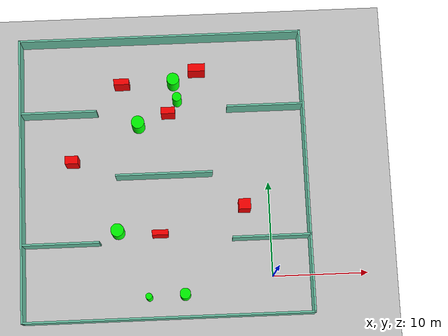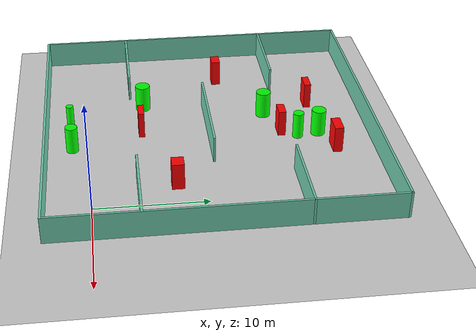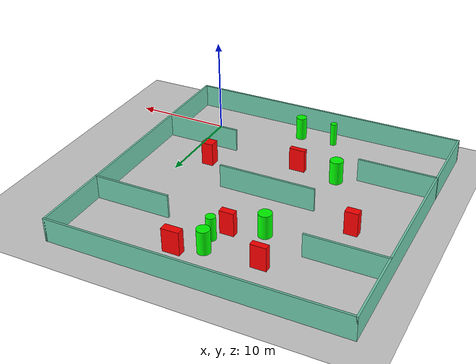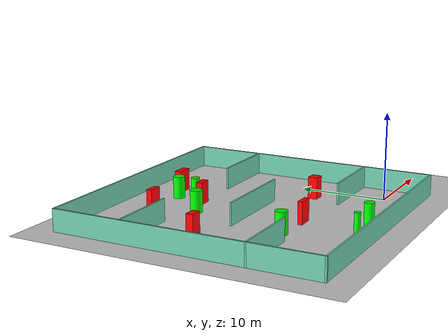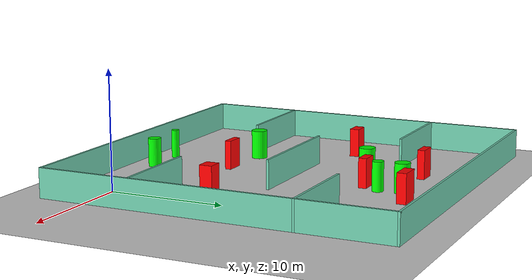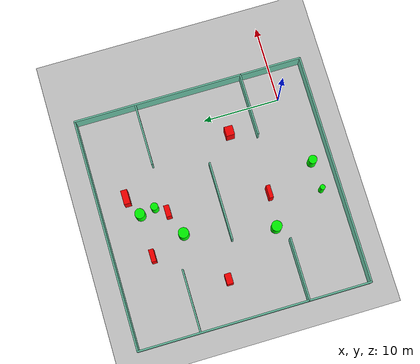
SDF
<sdf version="1.7">
 <world name="default">
  <light name="sun" type="directional">
   <pose>0 0 10 0 -0 0</pose>
   <diffuse>0.8 0.8 0.8 1</diffuse>
   <specular>0.2 0.2 0.2 1</specular>
   <attenuation>
    <range>1000</range>
    <constant>0.9</constant>
    <linear>0.01</linear>
    <quadratic>0.001</quadratic>
   </attenuation>
   <direction>-0.5 0.1 -0.9</direction>
   <spot><inner_angle>0</inner_angle><outer_angle>0</outer_angle><falloff>0</falloff></spot>
  </light>
  <model name="ground_plane">
   <static>1</static>
   <link name="link">
    <collision name="collision">
     <geometry><plane><normal>0 0 1</normal><size>100 100</size></plane></geometry>
     <surface>
      <contact><collide_bitmask>65535</collide_bitmask></contact>
      <friction><ode><mu>100</mu><mu2>50</mu2></ode></friction>
     </surface>
    </collision>
    <visual name="visual">
     <cast_shadows>0</cast_shadows>
     <geometry><plane><normal>0 0 1</normal><size>100 100</size></plane></geometry>
     <material>
      <script><uri>file://media/materials/scripts/gazebo.material</uri><name>Gazebo/Grey</name></script>
     </material>
    </visual>
   </link>
  </model>
  <gravity>0 0 -9.8</gravity>
  <magnetic_field>6e-06 2.3e-05 -4.2e-05</magnetic_field>
  <atmosphere type="adiabatic"/>
  <physics type="ode">
   <max_step_size>0.001</max_step_size>
   <real_time_factor>1</real_time_factor>
   <real_time_update_rate>1000</real_time_update_rate>
  </physics>
  <scene><ambient>0.4 0.4 0.4 1</ambient><background>0.7 0.7 0.7 1</background><shadows>1</shadows></scene>
  <spherical_coordinates>
   <surface_model>EARTH_WGS84</surface_model>
   <latitude_deg>0</latitude_deg>
   <longitude_deg>0</longitude_deg>
   <elevation>0</elevation>
   <heading_deg>0</heading_deg>
  </spherical_coordinates>
  <model name="my_base_walls">
   <link name="Wall_10">
    <collision name="Wall_10_Collision">
     <geometry><box><size>8.2 0.2 2.5</size></box></geometry>
     <pose>0 0 1.25 0 -0 0</pose>
    </collision>
    <visual name="Wall_10_Visual">
     <pose>0 0 1.25 0 -0 0</pose>
     <geometry><box><size>8.2 0.2 2.5</size></box></geometry>
     <material>
      <script><uri>file://media/materials/scripts/gazebo.material</uri><name>Gazebo/Grey</name></script>
      <ambient>0.435294 0.796078 0.67451 1</ambient>
     </material>
     <meta><layer>0</layer></meta>
    </visual>
    <pose>-11 -7 0 0 -0 0</pose>
   </link>
   <link name="Wall_12">
    <collision name="Wall_12_Collision">
     <geometry><box><size>8.2 0.2 2.5</size></box></geometry>
     <pose>0 0 1.25 0 -0 0</pose>
    </collision>
    <visual name="Wall_12_Visual">
     <pose>0 0 1.25 0 -0 0</pose>
     <geometry><box><size>8.2 0.2 2.5</size></box></geometry>
     <material>
      <script><uri>file://media/materials/scripts/gazebo.material</uri><name>Gazebo/Grey</name></script>
      <ambient>0.435294 0.796078 0.67451 1</ambient>
     </material>
     <meta><layer>0</layer></meta>
    </visual>
    <pose>-11 7 0 0 -0 0</pose>
   </link>
   <link name="Wall_14">
    <collision name="Wall_14_Collision">
     <geometry><box><size>8.2 0.2 2.5</size></box></geometry>
     <pose>0 0 1.25 0 -0 0</pose>
    </collision>
    <visual name="Wall_14_Visual">
     <pose>0 0 1.25 0 -0 0</pose>
     <geometry><box><size>8.2 0.2 2.5</size></box></geometry>
     <material>
      <script><uri>file://media/materials/scripts/gazebo.material</uri><name>Gazebo/Grey</name></script>
      <ambient>0.435294 0.796078 0.67451 1</ambient>
     </material>
     <meta><layer>0</layer></meta>
    </visual>
    <pose>11 7 0 0 -0 3.14159</pose>
   </link>
   <link name="Wall_16">
    <collision name="Wall_16_Collision">
     <geometry><box><size>10.2 0.2 2.5</size></box></geometry>
     <pose>0 0 1.25 0 -0 0</pose>
    </collision>
    <visual name="Wall_16_Visual">
     <pose>0 0 1.25 0 -0 0</pose>
     <geometry><box><size>10.2 0.2 2.5</size></box></geometry>
     <material>
      <script><uri>file://media/materials/scripts/gazebo.material</uri><name>Gazebo/Grey</name></script>
      <ambient>0.435294 0.796078 0.67451 1</ambient>
     </material>
     <meta><layer>0</layer></meta>
    </visual>
    <pose>0 0 0 0 -0 3.14159</pose>
   </link>
   <link name="Wall_2">
    <collision name="Wall_2_Collision">
     <geometry><box><size>30.2 0.2 2.5</size></box></geometry>
     <pose>0 0 1.25 0 -0 0</pose>
    </collision>
    <visual name="Wall_2_Visual">
     <pose>0 0 1.25 0 -0 0</pose>
     <geometry><box><size>30.2 0.2 2.5</size></box></geometry>
     <material>
      <script><uri>file://media/materials/scripts/gazebo.material</uri><name>Gazebo/Grey</name></script>
      <ambient>0.435294 0.796078 0.67451 1</ambient>
     </material>
     <meta><layer>0</layer></meta>
    </visual>
    <pose>0 -15 0 0 -0 3.14159</pose>
   </link>
   <link name="Wall_3">
    <collision name="Wall_3_Collision">
     <geometry><box><size>30.2 0.2 2.5</size></box></geometry>
     <pose>0 0 1.25 0 -0 0</pose>
    </collision>
    <visual name="Wall_3_Visual">
     <pose>0 0 1.25 0 -0 0</pose>
     <geometry><box><size>30.2 0.2 2.5</size></box></geometry>
     <material>
      <script><uri>file://media/materials/scripts/gazebo.material</uri><name>Gazebo/Grey</name></script>
      <ambient>0.435294 0.796078 0.67451 1</ambient>
     </material>
     <meta><layer>0</layer></meta>
    </visual>
    <pose>-15 0 0 0 -0 1.5708</pose>
   </link>
   <link name="Wall_4">
    <collision name="Wall_4_Collision">
     <geometry><box><size>30.2 0.2 2.5</size></box></geometry>
     <pose>0 0 1.25 0 -0 0</pose>
    </collision>
    <visual name="Wall_4_Visual">
     <pose>0 0 1.25 0 -0 0</pose>
     <geometry><box><size>30.2 0.2 2.5</size></box></geometry>
     <material>
      <script><uri>file://media/materials/scripts/gazebo.material</uri><name>Gazebo/Grey</name></script>
      <ambient>0.435294 0.796078 0.67451 1</ambient>
     </material>
     <meta><layer>0</layer></meta>
    </visual>
    <pose>0 15 0 0 -0 0</pose>
   </link>
   <link name="Wall_6">
    <collision name="Wall_6_Collision">
     <geometry><box><size>30.2 0.2 2.5</size></box></geometry>
     <pose>0 0 1.25 0 -0 0</pose>
    </collision>
    <visual name="Wall_6_Visual">
     <pose>0 0 1.25 0 -0 0</pose>
     <geometry><box><size>30.2 0.2 2.5</size></box></geometry>
     <material>
      <script><uri>file://media/materials/scripts/gazebo.material</uri><name>Gazebo/Grey</name></script>
      <ambient>0.435294 0.796078 0.67451 1</ambient>
     </material>
     <meta><layer>0</layer></meta>
    </visual>
    <pose>15 0 0 0 -0 1.5708</pose>
   </link>
   <link name="Wall_8">
    <collision name="Wall_8_Collision">
     <geometry><box><size>8.2 0.2 2.5</size></box></geometry>
     <pose>0 0 1.25 0 -0 0</pose>
    </collision>
    <visual name="Wall_8_Visual">
     <pose>0 0 1.25 0 -0 0</pose>
     <geometry><box><size>8.2 0.2 2.5</size></box></geometry>
     <material>
      <script><uri>file://media/materials/scripts/gazebo.material</uri><name>Gazebo/Grey</name></script>
      <ambient>0.435294 0.796078 0.67451 1</ambient>
     </material>
     <meta><layer>0</layer></meta>
    </visual>
    <pose>11 -7 0 0 -0 3.14159</pose>
   </link>
   <static>1</static>
   <pose>-11 11 0 0 -0 0</pose>
  </model>
  <model name="cylinder1">
   <static>1</static>
   <link name="link">
    <inertial>
     <mass>1</mass>
     <inertia><ixx>0.5</ixx><ixy>0</ixy><ixz>0</ixz><iyy>0.5</iyy><iyz>0</iyz><izz>1</izz></inertia>
    </inertial>
    <collision name="collision">
     <geometry><cylinder><radius>0.68902142395249</radius><length>2.5</length></cylinder></geometry>
    </collision>
    <visual name="visual">
     <geometry><cylinder><radius>0.68902142395249</radius><length>2.5</length></cylinder></geometry>
     <material>
      <ambient>0 1 0 1</ambient>
      <diffuse>0 1 0 1</diffuse>
      <specular>0.1 0.1 0.1 1</specular>
      <emissive>0 0 0 0</emissive>
     </material>
    </visual>
   </link>
   <pose>-16.033540875621824 5.190076468578164 1.25 0 0 0</pose>
  </model>
  <model name="cylinder2">
   <static>1</static>
   <link name="link">
    <inertial>
     <mass>1</mass>
     <inertia><ixx>0.5</ixx><ixy>0</ixy><ixz>0</ixz><iyy>0.5</iyy><iyz>0</iyz><izz>1</izz></inertia>
    </inertial>
    <collision name="collision">
     <geometry><cylinder><radius>0.6848314388634245</radius><length>2.5</length></cylinder></geometry>
    </collision>
    <visual name="visual">
     <geometry><cylinder><radius>0.6848314388634245</radius><length>2.5</length></cylinder></geometry>
     <material>
      <ambient>0 1 0 1</ambient>
      <diffuse>0 1 0 1</diffuse>
      <specular>0.1 0.1 0.1 1</specular>
      <emissive>0 0 0 0</emissive>
     </material>
    </visual>
   </link>
   <pose>-13.57892583504416 16.61398043957155 1.25 0 0 0</pose>
  </model>
  <model name="cylinder3">
   <static>1</static>
   <link name="link">
    <inertial>
     <mass>1</mass>
     <inertia><ixx>0.5</ixx><ixy>0</ixy><ixz>0</ixz><iyy>0.5</iyy><iyz>0</iyz><izz>1</izz></inertia>
    </inertial>
    <collision name="collision">
     <geometry><cylinder><radius>0.34084819831044505</radius><length>2.5</length></cylinder></geometry>
    </collision>
    <visual name="visual">
     <geometry><cylinder><radius>0.34084819831044505</radius><length>2.5</length></cylinder></geometry>
     <material>
      <ambient>0 1 0 1</ambient>
      <diffuse>0 1 0 1</diffuse>
      <specular>0.1 0.1 0.1 1</specular>
      <emissive>0 0 0 0</emissive>
     </material>
    </visual>
   </link>
   <pose>-12.962718868516411 -1.7735229312673897 1.25 0 0 0</pose>
  </model>
  <model name="cylinder4">
   <static>1</static>
   <link name="link">
    <inertial>
     <mass>1</mass>
     <inertia><ixx>0.5</ixx><ixy>0</ixy><ixz>0</ixz><iyy>0.5</iyy><iyz>0</iyz><izz>1</izz></inertia>
    </inertial>
    <collision name="collision">
     <geometry><cylinder><radius>0.6574655175954107</radius><length>2.5</length></cylinder></geometry>
    </collision>
    <visual name="visual">
     <geometry><cylinder><radius>0.6574655175954107</radius><length>2.5</length></cylinder></geometry>
     <material>
      <ambient>0 1 0 1</ambient>
      <diffuse>0 1 0 1</diffuse>
      <specular>0.1 0.1 0.1 1</specular>
      <emissive>0 0 0 0</emissive>
     </material>
    </visual>
   </link>
   <pose>-9.700416512899343 21.197660598318286 1.25 0 0 0</pose>
  </model>
  <model name="cylinder5">
   <static>1</static>
   <link name="link">
    <inertial>
     <mass>1</mass>
     <inertia><ixx>0.5</ixx><ixy>0</ixy><ixz>0</ixz><iyy>0.5</iyy><iyz>0</iyz><izz>1</izz></inertia>
    </inertial>
    <collision name="collision">
     <geometry><cylinder><radius>0.5583621504093734</radius><length>2.5</length></cylinder></geometry>
    </collision>
    <visual name="visual">
     <geometry><cylinder><radius>0.5583621504093734</radius><length>2.5</length></cylinder></geometry>
     <material>
      <ambient>0 1 0 1</ambient>
      <diffuse>0 1 0 1</diffuse>
      <specular>0.1 0.1 0.1 1</specular>
      <emissive>0 0 0 0</emissive>
     </material>
    </visual>
   </link>
   <pose>-9.222711218585523 -1.6400629885486686 1.25 0 0 0</pose>
  </model>
  <model name="cylinder6">
   <static>1</static>
   <link name="link">
    <inertial>
     <mass>1</mass>
     <inertia><ixx>0.5</ixx><ixy>0</ixy><ixz>0</ixz><iyy>0.5</iyy><iyz>0</iyz><izz>1</izz></inertia>
    </inertial>
    <collision name="collision">
     <geometry><cylinder><radius>0.48475914509386464</radius><length>2.5</length></cylinder></geometry>
    </collision>
    <visual name="visual">
     <geometry><cylinder><radius>0.48475914509386464</radius><length>2.5</length></cylinder></geometry>
     <material>
      <ambient>0 1 0 1</ambient>
      <diffuse>0 1 0 1</diffuse>
      <specular>0.1 0.1 0.1 1</specular>
      <emissive>0 0 0 0</emissive>
     </material>
    </visual>
   </link>
   <pose>-9.35529262453058 19.219750873318176 1.25 0 0 0</pose>
  </model>
  <model name="box1">
   <static>1</static>
   <link name="link">
    <inertial>
     <mass>1</mass>
     <inertia><ixx>0.083</ixx><ixy>0</ixy><ixz>0</ixz><iyy>0.083</iyy><iyz>0</iyz><izz>0.083</izz></inertia>
    </inertial>
    <collision name="collision">
     <geometry><box><size>1.248324032068731 1.0954177459827483 2.5</size></box></geometry>
    </collision>
    <visual name="visual">
     <geometry><box><size>1.248324032068731 1.0954177459827483 2.5</size></box></geometry>
     <material>
      <ambient>1 0 0 1</ambient>
      <diffuse>1 0 0 1</diffuse>
      <specular>0.1 0.1 0.1 1</specular>
      <emissive>0 0 0 0</emissive>
     </material>
    </visual>
    <sensor name="my_contact" type="contact">
     <contact><collision>box_collision</collision><topic>__default_topic__</topic></contact>
    </sensor>
   </link>
   <pose>-2.6847933475406975 7.4291547725722165 1.25 0 0 0</pose>
  </model>
  <model name="box2">
   <static>1</static>
   <link name="link">
    <inertial>
     <mass>1</mass>
     <inertia><ixx>0.083</ixx><ixy>0</ixy><ixz>0</ixz><iyy>0.083</iyy><iyz>0</iyz><izz>0.083</izz></inertia>
    </inertial>
    <collision name="collision">
     <geometry><box><size>1.8169184144202324 0.8174157799751374 2.5</size></box></geometry>
    </collision>
    <visual name="visual">
     <geometry><box><size>1.8169184144202324 0.8174157799751374 2.5</size></box></geometry>
     <material>
      <ambient>1 0 0 1</ambient>
      <diffuse>1 0 0 1</diffuse>
      <specular>0.1 0.1 0.1 1</specular>
      <emissive>0 0 0 0</emissive>
     </material>
    </visual>
    <sensor name="my_contact" type="contact">
     <contact><collision>box_collision</collision><topic>__default_topic__</topic></contact>
    </sensor>
   </link>
   <pose>-7.171336899293713 22.357576860816106 1.25 0 0 0</pose>
  </model>
  <model name="box3">
   <static>1</static>
   <link name="link">
    <inertial>
     <mass>1</mass>
     <inertia><ixx>0.083</ixx><ixy>0</ixy><ixz>0</ixz><iyy>0.083</iyy><iyz>0</iyz><izz>0.083</izz></inertia>
    </inertial>
    <collision name="collision">
     <geometry><box><size>1.6762940769316361 0.5363410759781948 2.5</size></box></geometry>
    </collision>
    <visual name="visual">
     <geometry><box><size>1.6762940769316361 0.5363410759781948 2.5</size></box></geometry>
     <material>
      <ambient>1 0 0 1</ambient>
      <diffuse>1 0 0 1</diffuse>
      <specular>0.1 0.1 0.1 1</specular>
      <emissive>0 0 0 0</emissive>
     </material>
    </visual>
    <sensor name="my_contact" type="contact">
     <contact><collision>box_collision</collision><topic>__default_topic__</topic></contact>
    </sensor>
   </link>
   <pose>-11.604359158594376 4.780810745767964 1.25 0 0 0</pose>
  </model>
  <model name="box4">
   <static>1</static>
   <link name="link">
    <inertial>
     <mass>1</mass>
     <inertia><ixx>0.083</ixx><ixy>0</ixy><ixz>0</ixz><iyy>0.083</iyy><iyz>0</iyz><izz>0.083</izz></inertia>
    </inertial>
    <collision name="collision">
     <geometry><box><size>1.617132325766522 0.6293647249555675 2.5</size></box></geometry>
    </collision>
    <visual name="visual">
     <geometry><box><size>1.617132325766522 0.6293647249555675 2.5</size></box></geometry>
     <material>
      <ambient>1 0 0 1</ambient>
      <diffuse>1 0 0 1</diffuse>
      <specular>0.1 0.1 0.1 1</specular>
      <emissive>0 0 0 0</emissive>
     </material>
    </visual>
    <sensor name="my_contact" type="contact">
     <contact><collision>box_collision</collision><topic>__default_topic__</topic></contact>
    </sensor>
   </link>
   <pose>-15.20858261481935 21.101632462549272 1.25 0 0 0</pose>
  </model>
  <model name="box5">
   <static>1</static>
   <link name="link">
    <inertial>
     <mass>1</mass>
     <inertia><ixx>0.083</ixx><ixy>0</ixy><ixz>0</ixz><iyy>0.083</iyy><iyz>0</iyz><izz>0.083</izz></inertia>
    </inertial>
    <collision name="collision">
     <geometry><box><size>1.371412387278094 0.8324457481215211 2.5</size></box></geometry>
    </collision>
    <visual name="visual">
     <geometry><box><size>1.371412387278094 0.8324457481215211 2.5</size></box></geometry>
     <material>
      <ambient>1 0 0 1</ambient>
      <diffuse>1 0 0 1</diffuse>
      <specular>0.1 0.1 0.1 1</specular>
      <emissive>0 0 0 0</emissive>
     </material>
    </visual>
    <sensor name="my_contact" type="contact">
     <contact><collision>box_collision</collision><topic>__default_topic__</topic></contact>
    </sensor>
   </link>
   <pose>-20.653063642629462 12.805676352079049 1.25 0 0 0</pose>
  </model>
  <model name="box6">
   <static>1</static>
   <link name="link">
    <inertial>
     <mass>1</mass>
     <inertia><ixx>0.083</ixx><ixy>0</ixy><ixz>0</ixz><iyy>0.083</iyy><iyz>0</iyz><izz>0.083</izz></inertia>
    </inertial>
    <collision name="collision">
     <geometry><box><size>1.4846221398309507 0.6960982337396013 2.5</size></box></geometry>
    </collision>
    <visual name="visual">
     <geometry><box><size>1.4846221398309507 0.6960982337396013 2.5</size></box></geometry>
     <material>
      <ambient>1 0 0 1</ambient>
      <diffuse>1 0 0 1</diffuse>
      <specular>0.1 0.1 0.1 1</specular>
      <emissive>0 0 0 0</emissive>
     </material>
    </visual>
    <sensor name="my_contact" type="contact">
     <contact><collision>box_collision</collision><topic>__default_topic__</topic></contact>
    </sensor>
   </link>
   <pose>-10.353647224868238 17.766593640217277 1.25 0 0 0</pose>
  </model>
 </world>
</sdf>
